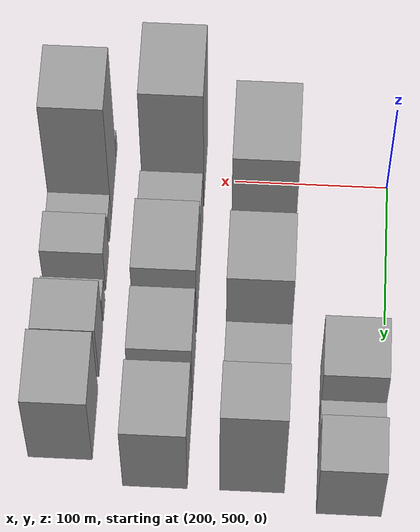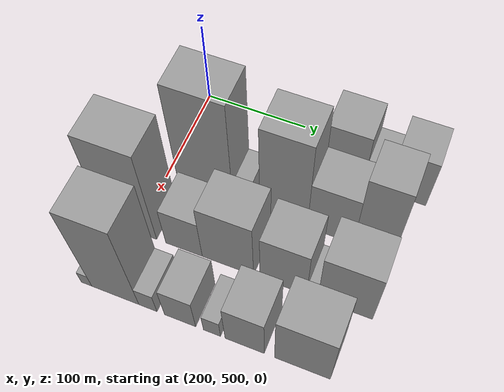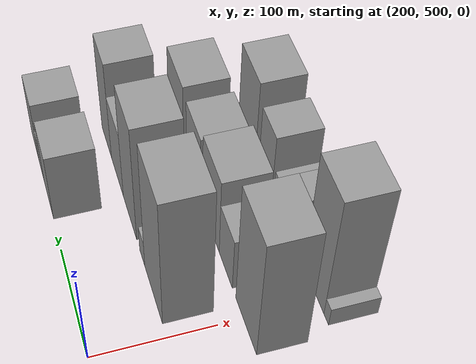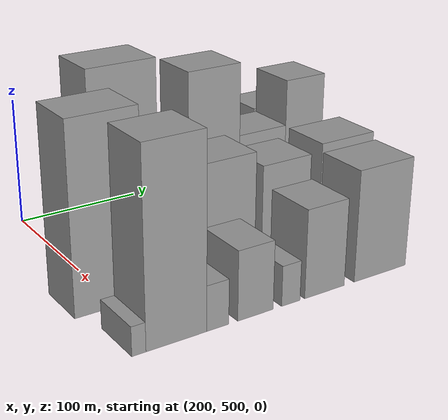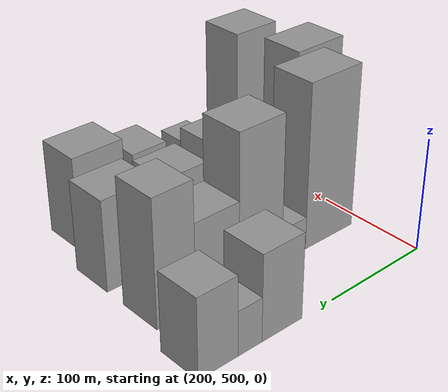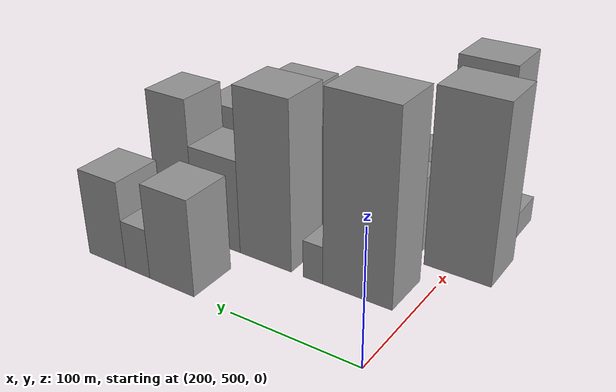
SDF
<sdf version="1.6">
 <world name="default">
  <model name="building_163">
   <static>1</static>
   <pose>220.0000 651.8011 0 0.000000 0.000000 0.000000</pose>
   <link name="link">
    <pose>0 0 37.50 0 0 0</pose>
    <collision name="collision"><geometry><box><size>40.0000 40.0640 75.0000</size></box></geometry></collision>
    <visual name="visual">
     <cast_shadows>0</cast_shadows>
     <geometry><box><size>40.0000 40.0640 75.0000</size></box></geometry>
     <material>
      <script>
       <uri>model://grey_wall/materials/scripts</uri>
       <uri>model://grey_wall/materials/textures</uri>
       <name>vrc/grey_wall</name>
      </script>
     </material>
    </visual>
   </link>
  </model>
  <model name="building_164">
   <static>1</static>
   <pose>220.0000 683.2706 0 0.000000 0.000000 0.000000</pose>
   <link name="link">
    <pose>0 0 19.50 0 0 0</pose>
    <collision name="collision"><geometry><box><size>40.0000 22.8750 39.0000</size></box></geometry></collision>
    <visual name="visual">
     <cast_shadows>0</cast_shadows>
     <geometry><box><size>40.0000 22.8750 39.0000</size></box></geometry>
     <material>
      <script>
       <uri>model://grey_wall/materials/scripts</uri>
       <uri>model://grey_wall/materials/textures</uri>
       <name>vrc/grey_wall</name>
      </script>
     </material>
    </visual>
   </link>
  </model>
  <model name="building_165">
   <static>1</static>
   <pose>220.0000 712.8104 0 0.000000 0.000000 0.000000</pose>
   <link name="link">
    <pose>0 0 34.50 0 0 0</pose>
    <collision name="collision"><geometry><box><size>40.0000 36.2046 69.0000</size></box></geometry></collision>
    <visual name="visual">
     <cast_shadows>0</cast_shadows>
     <geometry><box><size>40.0000 36.2046 69.0000</size></box></geometry>
     <material>
      <script>
       <uri>model://grey_wall/materials/scripts</uri>
       <uri>model://grey_wall/materials/textures</uri>
       <name>vrc/grey_wall</name>
      </script>
     </material>
    </visual>
   </link>
  </model>
  <model name="building_212">
   <static>1</static>
   <pose>280.0000 539.6585 0 0.000000 0.000000 0.000000</pose>
   <link name="link">
    <pose>0 0 73.50 0 0 0</pose>
    <collision name="collision"><geometry><box><size>40.0000 54.4994 147.0000</size></box></geometry></collision>
    <visual name="visual">
     <cast_shadows>0</cast_shadows>
     <geometry><box><size>40.0000 54.4994 147.0000</size></box></geometry>
     <material>
      <script>
       <uri>model://grey_wall/materials/scripts</uri>
       <uri>model://grey_wall/materials/textures</uri>
       <name>vrc/grey_wall</name>
      </script>
     </material>
    </visual>
   </link>
  </model>
  <model name="building_213">
   <static>1</static>
   <pose>280.0000 575.1079 0 0.000000 0.000000 0.000000</pose>
   <link name="link">
    <pose>0 0 15.00 0 0 0</pose>
    <collision name="collision"><geometry><box><size>40.0000 16.3994 30.0000</size></box></geometry></collision>
    <visual name="visual">
     <cast_shadows>0</cast_shadows>
     <geometry><box><size>40.0000 16.3994 30.0000</size></box></geometry>
     <material>
      <script>
       <uri>model://grey_wall/materials/scripts</uri>
       <uri>model://grey_wall/materials/textures</uri>
       <name>vrc/grey_wall</name>
      </script>
     </material>
    </visual>
   </link>
  </model>
  <model name="building_214">
   <static>1</static>
   <pose>280.0000 616.0432 0 0.000000 0.000000 0.000000</pose>
   <link name="link">
    <pose>0 0 66.00 0 0 0</pose>
    <collision name="collision"><geometry><box><size>40.0000 45.4712 132.0000</size></box></geometry></collision>
    <visual name="visual">
     <cast_shadows>0</cast_shadows>
     <geometry><box><size>40.0000 45.4712 132.0000</size></box></geometry>
     <material>
      <script>
       <uri>model://grey_wall/materials/scripts</uri>
       <uri>model://grey_wall/materials/textures</uri>
       <name>vrc/grey_wall</name>
      </script>
     </material>
    </visual>
   </link>
  </model>
  <model name="building_215">
   <static>1</static>
   <pose>280.0000 660.3918 0 0.000000 0.000000 0.000000</pose>
   <link name="link">
    <pose>0 0 37.50 0 0 0</pose>
    <collision name="collision"><geometry><box><size>40.0000 43.2259 75.0000</size></box></geometry></collision>
    <visual name="visual">
     <cast_shadows>0</cast_shadows>
     <geometry><box><size>40.0000 43.2259 75.0000</size></box></geometry>
     <material>
      <script>
       <uri>model://grey_wall/materials/scripts</uri>
       <uri>model://grey_wall/materials/textures</uri>
       <name>vrc/grey_wall</name>
      </script>
     </material>
    </visual>
   </link>
  </model>
  <model name="building_216">
   <static>1</static>
   <pose>280.0000 700.1992 0 0.000000 0.000000 0.000000</pose>
   <link name="link">
    <pose>0 0 55.50 0 0 0</pose>
    <collision name="collision"><geometry><box><size>40.0000 36.3891 111.0000</size></box></geometry></collision>
    <visual name="visual">
     <cast_shadows>0</cast_shadows>
     <geometry><box><size>40.0000 36.3891 111.0000</size></box></geometry>
     <material>
      <script>
       <uri>model://grey_wall/materials/scripts</uri>
       <uri>model://grey_wall/materials/textures</uri>
       <name>vrc/grey_wall</name>
      </script>
     </material>
    </visual>
   </link>
  </model>
  <model name="building_262">
   <static>1</static>
   <pose>340.0000 493.6561 0 0.000000 0.000000 0.000000</pose>
   <link name="link">
    <pose>0 0 69.00 0 0 0</pose>
    <collision name="collision"><geometry><box><size>40.0000 51.5532 138.0000</size></box></geometry></collision>
    <visual name="visual">
     <cast_shadows>0</cast_shadows>
     <geometry><box><size>40.0000 51.5532 138.0000</size></box></geometry>
     <material>
      <script>
       <uri>model://grey_wall/materials/scripts</uri>
       <uri>model://grey_wall/materials/textures</uri>
       <name>vrc/grey_wall</name>
      </script>
     </material>
    </visual>
   </link>
  </model>
  <model name="building_263">
   <static>1</static>
   <pose>340.0000 545.9384 0 0.000000 0.000000 0.000000</pose>
   <link name="link">
    <pose>0 0 30.00 0 0 0</pose>
    <collision name="collision"><geometry><box><size>40.0000 35.0116 60.0000</size></box></geometry></collision>
    <visual name="visual">
     <cast_shadows>0</cast_shadows>
     <geometry><box><size>40.0000 35.0116 60.0000</size></box></geometry>
     <material>
      <script>
       <uri>model://grey_wall/materials/scripts</uri>
       <uri>model://grey_wall/materials/textures</uri>
       <name>vrc/grey_wall</name>
      </script>
     </material>
    </visual>
   </link>
  </model>
  <model name="building_264">
   <static>1</static>
   <pose>340.0000 587.5298 0 0.000000 0.000000 0.000000</pose>
   <link name="link">
    <pose>0 0 43.50 0 0 0</pose>
    <collision name="collision"><geometry><box><size>40.0000 48.1712 87.0000</size></box></geometry></collision>
    <visual name="visual">
     <cast_shadows>0</cast_shadows>
     <geometry><box><size>40.0000 48.1712 87.0000</size></box></geometry>
     <material>
      <script>
       <uri>model://grey_wall/materials/scripts</uri>
       <uri>model://grey_wall/materials/textures</uri>
       <name>vrc/grey_wall</name>
      </script>
     </material>
    </visual>
   </link>
  </model>
  <model name="building_265">
   <static>1</static>
   <pose>340.0000 638.8487 0 0.000000 0.000000 0.000000</pose>
   <link name="link">
    <pose>0 0 37.50 0 0 0</pose>
    <collision name="collision"><geometry><box><size>40.0000 42.4667 75.0000</size></box></geometry></collision>
    <visual name="visual">
     <cast_shadows>0</cast_shadows>
     <geometry><box><size>40.0000 42.4667 75.0000</size></box></geometry>
     <material>
      <script>
       <uri>model://grey_wall/materials/scripts</uri>
       <uri>model://grey_wall/materials/textures</uri>
       <name>vrc/grey_wall</name>
      </script>
     </material>
    </visual>
   </link>
  </model>
  <model name="building_266">
   <static>1</static>
   <pose>340.0000 665.0602 0 0.000000 0.000000 0.000000</pose>
   <link name="link">
    <pose>0 0 10.50 0 0 0</pose>
    <collision name="collision"><geometry><box><size>40.0000 9.9562 21.0000</size></box></geometry></collision>
    <visual name="visual">
     <cast_shadows>0</cast_shadows>
     <geometry><box><size>40.0000 9.9562 21.0000</size></box></geometry>
     <material>
      <script>
       <uri>model://grey_wall/materials/scripts</uri>
       <uri>model://grey_wall/materials/textures</uri>
       <name>vrc/grey_wall</name>
      </script>
     </material>
    </visual>
   </link>
  </model>
  <model name="building_267">
   <static>1</static>
   <pose>340.0000 694.2841 0 0.000000 0.000000 0.000000</pose>
   <link name="link">
    <pose>0 0 40.50 0 0 0</pose>
    <collision name="collision"><geometry><box><size>40.0000 48.4916 81.0000</size></box></geometry></collision>
    <visual name="visual">
     <cast_shadows>0</cast_shadows>
     <geometry><box><size>40.0000 48.4916 81.0000</size></box></geometry>
     <material>
      <script>
       <uri>model://grey_wall/materials/scripts</uri>
       <uri>model://grey_wall/materials/textures</uri>
       <name>vrc/grey_wall</name>
      </script>
     </material>
    </visual>
   </link>
  </model>
  <model name="building_316">
   <static>1</static>
   <pose>400.0000 482.2299 0 0.000000 0.000000 0.000000</pose>
   <link name="link">
    <pose>0 0 10.50 0 0 0</pose>
    <collision name="collision"><geometry><box><size>40.0000 10.0223 21.0000</size></box></geometry></collision>
    <visual name="visual">
     <cast_shadows>0</cast_shadows>
     <geometry><box><size>40.0000 10.0223 21.0000</size></box></geometry>
     <material>
      <script>
       <uri>model://grey_wall/materials/scripts</uri>
       <uri>model://grey_wall/materials/textures</uri>
       <name>vrc/grey_wall</name>
      </script>
     </material>
    </visual>
   </link>
  </model>
  <model name="building_317">
   <static>1</static>
   <pose>400.0000 509.5868 0 0.000000 0.000000 0.000000</pose>
   <link name="link">
    <pose>0 0 69.00 0 0 0</pose>
    <collision name="collision"><geometry><box><size>40.0000 44.6915 138.0000</size></box></geometry></collision>
    <visual name="visual">
     <cast_shadows>0</cast_shadows>
     <geometry><box><size>40.0000 44.6915 138.0000</size></box></geometry>
     <material>
      <script>
       <uri>model://grey_wall/materials/scripts</uri>
       <uri>model://grey_wall/materials/textures</uri>
       <name>vrc/grey_wall</name>
      </script>
     </material>
    </visual>
   </link>
  </model>
  <model name="building_318">
   <static>1</static>
   <pose>400.0000 540.3578 0 0.000000 0.000000 0.000000</pose>
   <link name="link">
    <pose>0 0 16.50 0 0 0</pose>
    <collision name="collision"><geometry><box><size>40.0000 16.8506 33.0000</size></box></geometry></collision>
    <visual name="visual">
     <cast_shadows>0</cast_shadows>
     <geometry><box><size>40.0000 16.8506 33.0000</size></box></geometry>
     <material>
      <script>
       <uri>model://grey_wall/materials/scripts</uri>
       <uri>model://grey_wall/materials/textures</uri>
       <name>vrc/grey_wall</name>
      </script>
     </material>
    </visual>
   </link>
  </model>
  <model name="building_319">
   <static>1</static>
   <pose>400.0000 570.0569 0 0.000000 0.000000 0.000000</pose>
   <link name="link">
    <pose>0 0 25.50 0 0 0</pose>
    <collision name="collision"><geometry><box><size>40.0000 28.5477 51.0000</size></box></geometry></collision>
    <visual name="visual">
     <cast_shadows>0</cast_shadows>
     <geometry><box><size>40.0000 28.5477 51.0000</size></box></geometry>
     <material>
      <script>
       <uri>model://grey_wall/materials/scripts</uri>
       <uri>model://grey_wall/materials/textures</uri>
       <name>vrc/grey_wall</name>
      </script>
     </material>
    </visual>
   </link>
  </model>
  <model name="building_320">
   <static>1</static>
   <pose>400.0000 599.0292 0 0.000000 0.000000 0.000000</pose>
   <link name="link">
    <pose>0 0 15.00 0 0 0</pose>
    <collision name="collision"><geometry><box><size>40.0000 15.3970 30.0000</size></box></geometry></collision>
    <visual name="visual">
     <cast_shadows>0</cast_shadows>
     <geometry><box><size>40.0000 15.3970 30.0000</size></box></geometry>
     <material>
      <script>
       <uri>model://grey_wall/materials/scripts</uri>
       <uri>model://grey_wall/materials/textures</uri>
       <name>vrc/grey_wall</name>
      </script>
     </material>
    </visual>
   </link>
  </model>
  <model name="building_321">
   <static>1</static>
   <pose>400.0000 628.0355 0 0.000000 0.000000 0.000000</pose>
   <link name="link">
    <pose>0 0 33.00 0 0 0</pose>
    <collision name="collision"><geometry><box><size>40.0000 34.6155 66.0000</size></box></geometry></collision>
    <visual name="visual">
     <cast_shadows>0</cast_shadows>
     <geometry><box><size>40.0000 34.6155 66.0000</size></box></geometry>
     <material>
      <script>
       <uri>model://grey_wall/materials/scripts</uri>
       <uri>model://grey_wall/materials/textures</uri>
       <name>vrc/grey_wall</name>
      </script>
     </material>
    </visual>
   </link>
  </model>
  <model name="building_322">
   <static>1</static>
   <pose>400.0000 678.2726 0 0.000000 0.000000 0.000000</pose>
   <link name="link">
    <pose>0 0 42.00 0 0 0</pose>
    <collision name="collision"><geometry><box><size>40.0000 47.8587 84.0000</size></box></geometry></collision>
    <visual name="visual">
     <cast_shadows>0</cast_shadows>
     <geometry><box><size>40.0000 47.8587 84.0000</size></box></geometry>
     <material>
      <script>
       <uri>model://grey_wall/materials/scripts</uri>
       <uri>model://grey_wall/materials/textures</uri>
       <name>vrc/grey_wall</name>
      </script>
     </material>
    </visual>
   </link>
  </model>
 </world>
</sdf>
